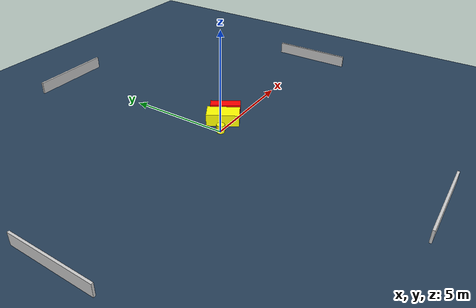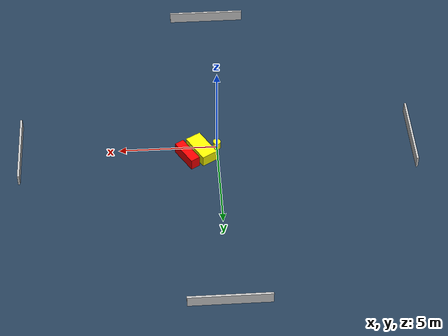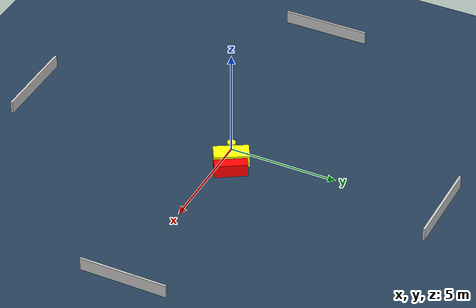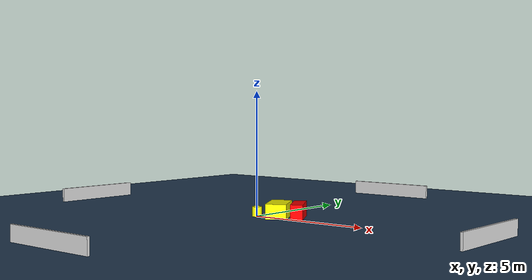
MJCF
<?xml version="1.0" ?>
<mujoco model="generated_environment">
  <option timestep="0.01" integrator="RK4" cone="elliptic"/>
  <default>
    <geom density="1"/>
  </default>
  <asset>
    <texture builtin="gradient" height="3072" name="skybox" rgb1="0.3 0.5 0.7" rgb2="0 0 0" type="skybox" width="512"/>
    <texture builtin="checker" height="300" name="groundplane" rgb1="0.2 0.3 0.4" rgb2="0.1 0.2 0.3" type="2d" width="300"/>
    <material name="groundplane" reflectance="0.2" texrepeat="5 5" texture="groundplane"/>
  </asset>
  <worldbody>
    <light dir="0 0 -1" directional="true" pos="0 0 1.5"/>
    <geom condim="3" friction="0.5 0.005 0.001" material="groundplane" name="floor" pos="0 0 0" size="0 0 0.05" type="plane"/>
    <body name="walls">
      <geom name="wall_1" condim="4" pos="-10.0 0.0 0.3" rgba="0.800000011920929 0.800000011920929 0.800000011920929 1.0" size="0.05 2.0 0.3" type="box"/>
      <geom name="wall_2" condim="4" pos="10.0 0.0 0.3" rgba="0.800000011920929 0.800000011920929 0.800000011920929 1.0" size="0.05 2.0 0.3" type="box"/>
      <geom name="wall_3" condim="4" pos="0.0 -10.0 0.3" rgba="0.800000011920929 0.800000011920929 0.800000011920929 1.0" size="2.0 0.05 0.3" type="box"/>
      <geom name="wall_4" condim="4" pos="0.0 10.0 0.3" rgba="0.800000011920929 0.800000011920929 0.800000011920929 1.0" size="2.0 0.05 0.3" type="box"/>
    </body>
    <body name="robot">
      <joint name="joint_x" type="slide" pos="0 0 0" axis="1 0 0"/>
      <joint name="joint_y" type="slide" pos="0 0 0" axis="0 1 0"/>
      <geom name="robot" type="cylinder" pos="0.0 0.0 0.2" size="0.2 0.2 0.0" mass="5.0" friction="1.0 0.005 0.0001" condim="4" rgba="1.0 1.0 0.0 1.0"/>
    </body>
    <body name="obstacle_1_movable">
      <geom name="obstacle_1_movable" condim="4" pos="0.8156768194753599 0.3986095510579941 0.3" euler="0 0 29.93230859510248" friction="0.0 0.005 0.001" rgba="1.0 1.0 0.0 1.0" size="0.41724607326225965 0.7948830759892087 0.3" type="box" mass="0.1"/>
      <joint type="free"/>
    </body>
    <body name="obstacle_2_static">
      <geom name="obstacle_2_static" condim="4" pos="1.542786302131595 0.7360600789482145 0.3" euler="0 0 211.56972780683293" friction="0.0 0.005 0.001" rgba="1.0 0.0 0.0 1.0" size="0.24687858334571117 0.7396590413357786 0.3" type="box"/>
    </body>
  </worldbody>
  <actuator>
    <motor name="actuator_x" joint="joint_x" gear="1" ctrlrange="-1 1"/>
    <motor name="actuator_y" joint="joint_y" gear="1" ctrlrange="-1 1"/>
  </actuator>
</mujoco>
